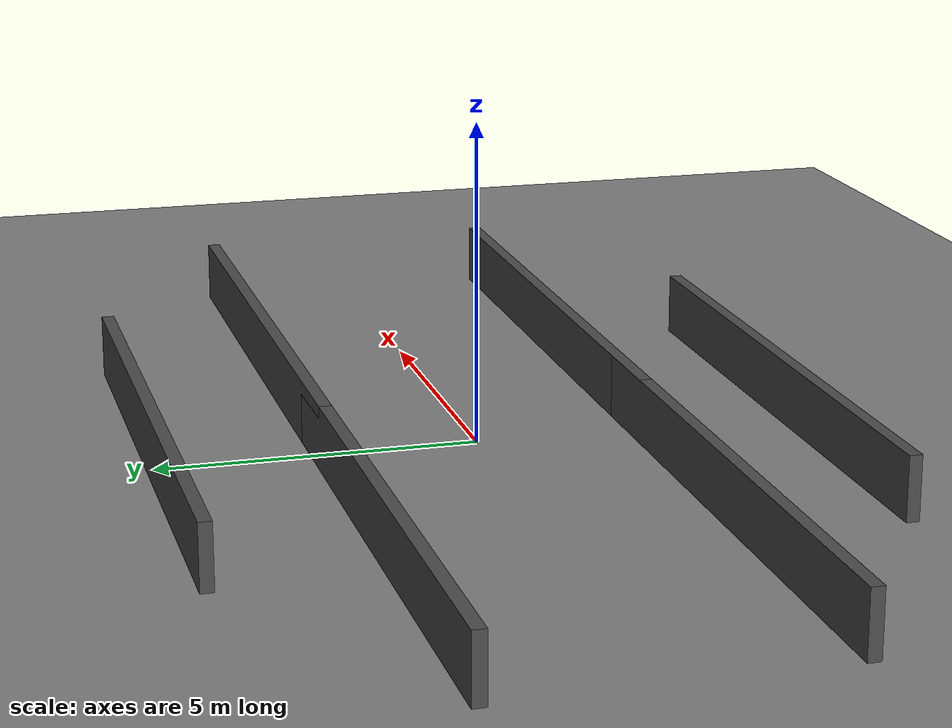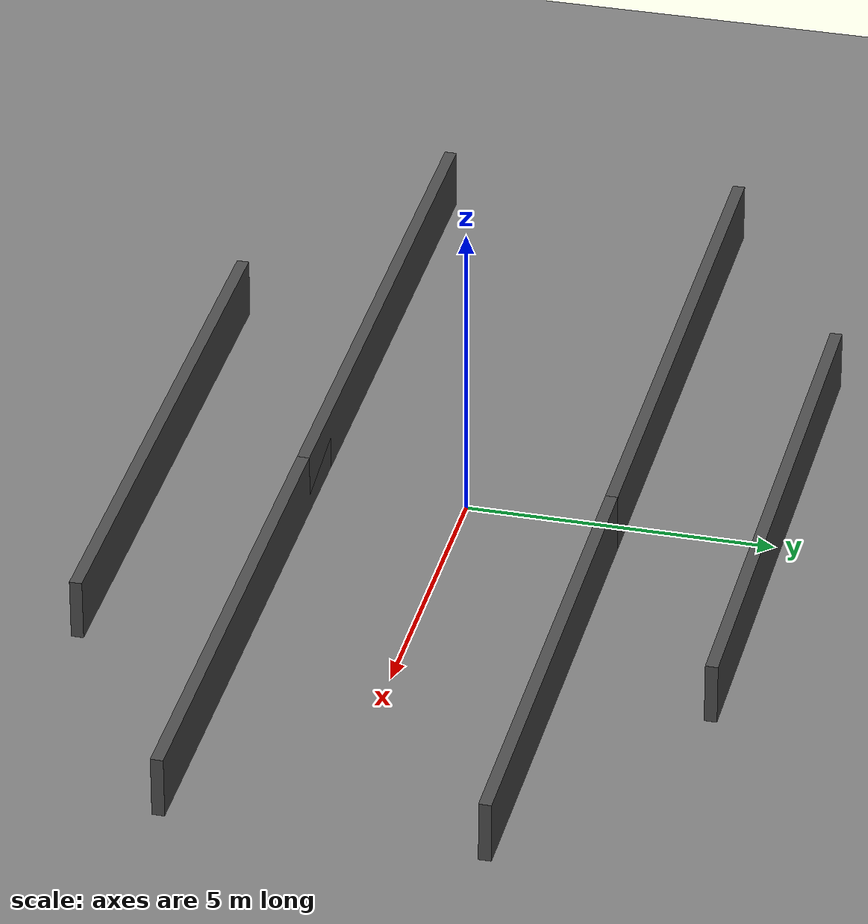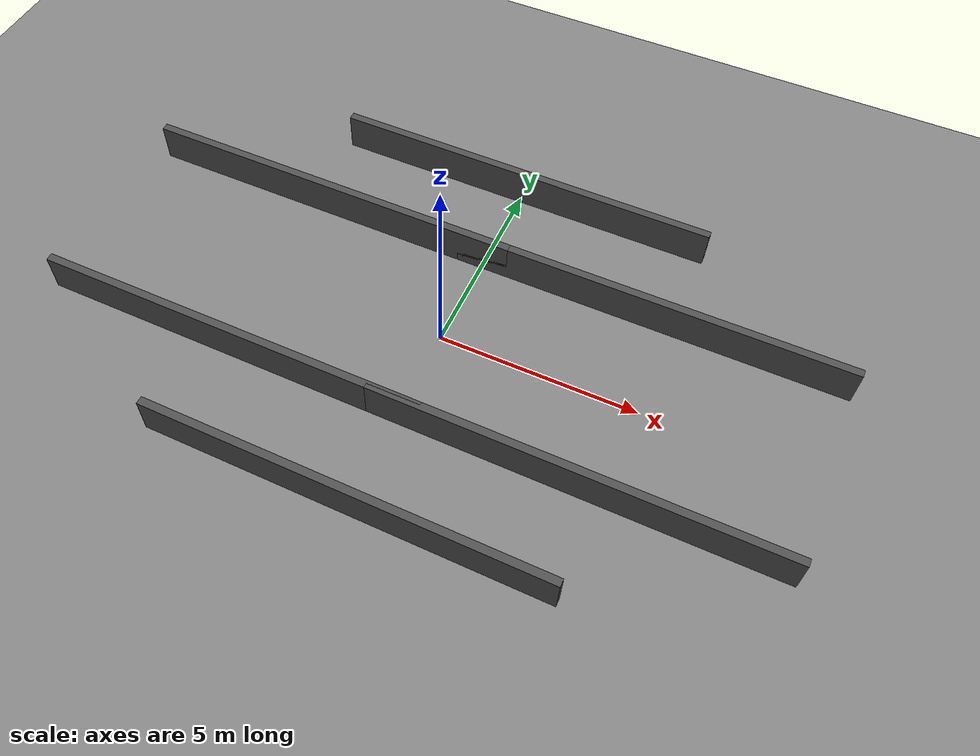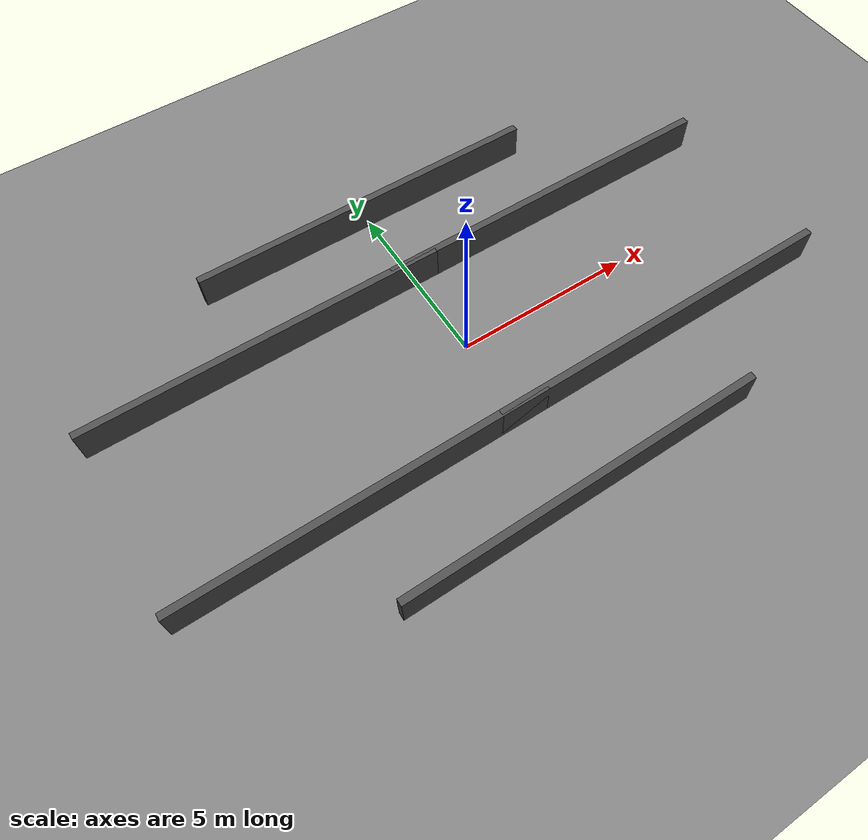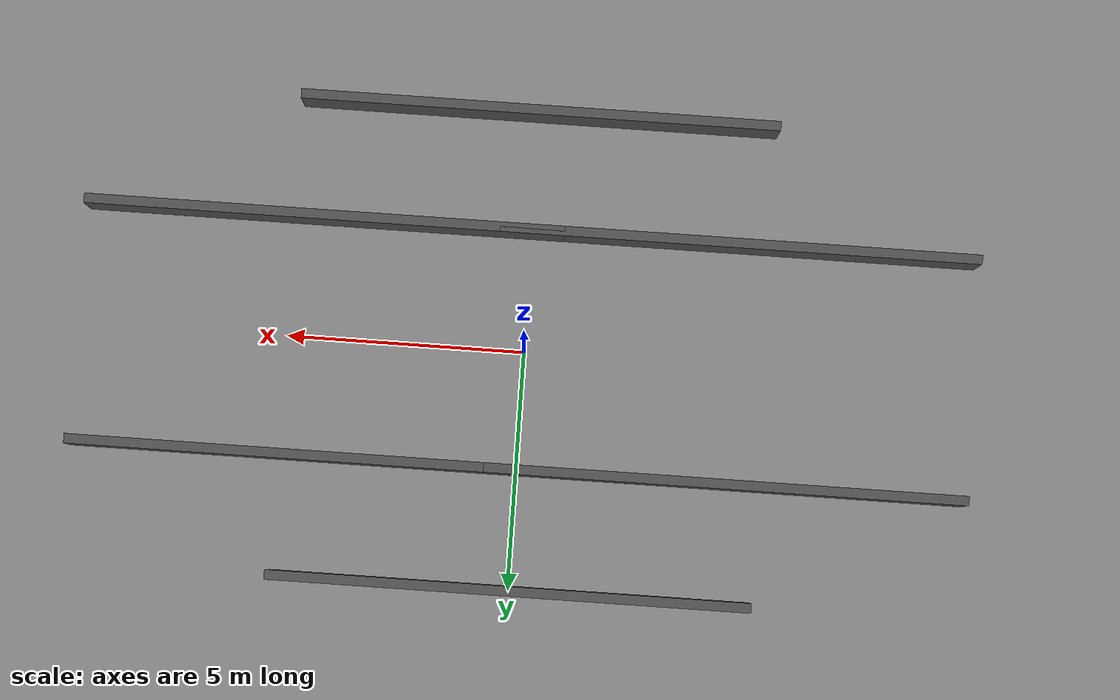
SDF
<?xml version="1.0" ?>
<sdf version='1.6'>
  <world name='hexagon_fixed'>

    <!-- Simple ground plane -->
    <model name='ground_plane'>
      <static>true</static>
      <link name='link'>
        <collision name='collision'>
          <geometry>
            <plane>
              <normal>0 0 1</normal>
              <size>100 100</size>
            </plane>
          </geometry>
          <surface>
            <friction>
              <ode>
                <mu>100</mu>
                <mu2>50</mu2>
              </ode>
            </friction>
            <contact>
              <ode/>
            </contact>
          </surface>
          <max_contacts>10</max_contacts>
        </collision>
        <visual name='visual'>
          <cast_shadows>false</cast_shadows>
          <geometry>
            <plane>
              <normal>0 0 1</normal>
              <size>100 100</size>
            </plane>
          </geometry>
          <material>
            <ambient>0.5 0.5 0.5 1</ambient>
            <diffuse>0.5 0.5 0.5 1</diffuse>
          </material>
        </visual>
      </link>
    </model>

    <!-- Simple lighting -->
    <light name='sun' type='directional'>
      <cast_shadows>false</cast_shadows>
      <pose>0 0 10 0 0 0</pose>
      <diffuse>0.8 0.8 0.8 1</diffuse>
      <specular>0.2 0.2 0.2 1</specular>
      <attenuation>
        <range>1000</range>
        <constant>0.9</constant>
        <linear>0.01</linear>
        <quadratic>0.001</quadratic>
      </attenuation>
      <direction>-0.5 0.1 -0.9</direction>
    </light>

    <!-- Simple hexagon walls using basic geometry instead of meshes -->
    <model name='hexagon_walls'>
      <static>1</static>
      <pose>0 0 0 0 0 0</pose>

      <!-- Wall 1 -->
      <link name='wall1'>
        <collision name='collision'>
          <pose>0 5 0.5 0 0 0</pose>
          <geometry>
            <box>
              <size>10 0.2 1</size>
            </box>
          </geometry>
          <max_contacts>10</max_contacts>
        </collision>
        <visual name='visual'>
          <pose>0 5 0.5 0 0 0</pose>
          <geometry>
            <box>
              <size>10 0.2 1</size>
            </box>
          </geometry>
          <material>
            <ambient>0.3 0.3 0.3 1</ambient>
            <diffuse>0.3 0.3 0.3 1</diffuse>
          </material>
        </visual>
      </link>

      <!-- Wall 2 -->
      <link name='wall2'>
        <collision name='collision'>
          <pose>4.33 2.5 0.5 0 0 0</pose>
          <geometry>
            <box>
              <size>10 0.2 1</size>
            </box>
          </geometry>
          <max_contacts>10</max_contacts>
        </collision>
        <visual name='visual'>
          <pose>4.33 2.5 0.5 0 0 0</pose>
          <geometry>
            <box>
              <size>10 0.2 1</size>
            </box>
          </geometry>
          <material>
            <ambient>0.3 0.3 0.3 1</ambient>
            <diffuse>0.3 0.3 0.3 1</diffuse>
          </material>
        </visual>
      </link>

      <!-- Wall 3 -->
      <link name='wall3'>
        <collision name='collision'>
          <pose>4.33 -2.5 0.5 0 0 0</pose>
          <geometry>
            <box>
              <size>10 0.2 1</size>
            </box>
          </geometry>
          <max_contacts>10</max_contacts>
        </collision>
        <visual name='visual'>
          <pose>4.33 -2.5 0.5 0 0 0</pose>
          <geometry>
            <box>
              <size>10 0.2 1</size>
            </box>
          </geometry>
          <material>
            <ambient>0.3 0.3 0.3 1</ambient>
            <diffuse>0.3 0.3 0.3 1</diffuse>
          </material>
        </visual>
      </link>

      <!-- Wall 4 -->
      <link name='wall4'>
        <collision name='collision'>
          <pose>0 -5 0.5 0 0 0</pose>
          <geometry>
            <box>
              <size>10 0.2 1</size>
            </box>
          </geometry>
          <max_contacts>10</max_contacts>
        </collision>
        <visual name='visual'>
          <pose>0 -5 0.5 0 0 0</pose>
          <geometry>
            <box>
              <size>10 0.2 1</size>
            </box>
          </geometry>
          <material>
            <ambient>0.3 0.3 0.3 1</ambient>
            <diffuse>0.3 0.3 0.3 1</diffuse>
          </material>
        </visual>
      </link>

      <!-- Wall 5 -->
      <link name='wall5'>
        <collision name='collision'>
          <pose>-4.33 -2.5 0.5 0 0 0</pose>
          <geometry>
            <box>
              <size>10 0.2 1</size>
            </box>
          </geometry>
          <max_contacts>10</max_contacts>
        </collision>
        <visual name='visual'>
          <pose>-4.33 -2.5 0.5 0 0 0</pose>
          <geometry>
            <box>
              <size>10 0.2 1</size>
            </box>
          </geometry>
          <material>
            <ambient>0.3 0.3 0.3 1</ambient>
            <diffuse>0.3 0.3 0.3 1</diffuse>
          </material>
        </visual>
      </link>

      <!-- Wall 6 -->
      <link name='wall6'>
        <collision name='collision'>
          <pose>-4.33 2.5 0.5 0 0 0</pose>
          <geometry>
            <box>
              <size>10 0.2 1</size>
            </box>
          </geometry>
          <max_contacts>10</max_contacts>
        </collision>
        <visual name='visual'>
          <pose>-4.33 2.5 0.5 0 0 0</pose>
          <geometry>
            <box>
              <size>10 0.2 1</size>
            </box>
          </geometry>
          <material>
            <ambient>0.3 0.3 0.3 1</ambient>
            <diffuse>0.3 0.3 0.3 1</diffuse>
          </material>
        </visual>
      </link>
    </model>

    <!-- Physics settings -->
    <physics type='ode'>
      <max_step_size>0.001</max_step_size>
      <real_time_factor>1</real_time_factor>
      <real_time_update_rate>1000</real_time_update_rate>
      <gravity>0 0 -9.8</gravity>
    </physics>

    <!-- Scene settings -->
    <scene>
      <ambient>0.4 0.4 0.4 1</ambient>
      <background>0.7 0.7 0.7 1</background>
      <shadows>false</shadows>
    </scene>

  </world>
</sdf>
